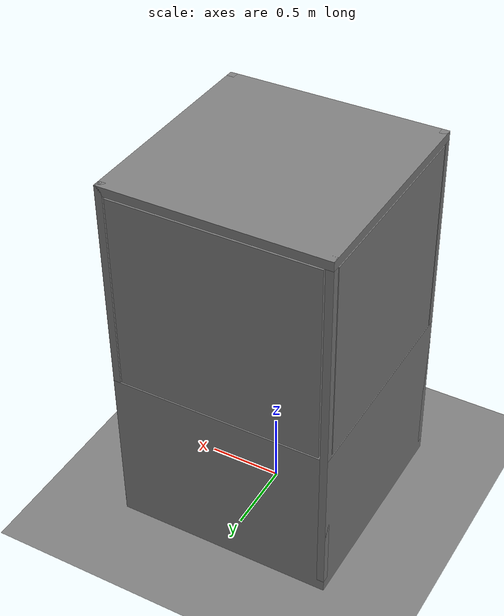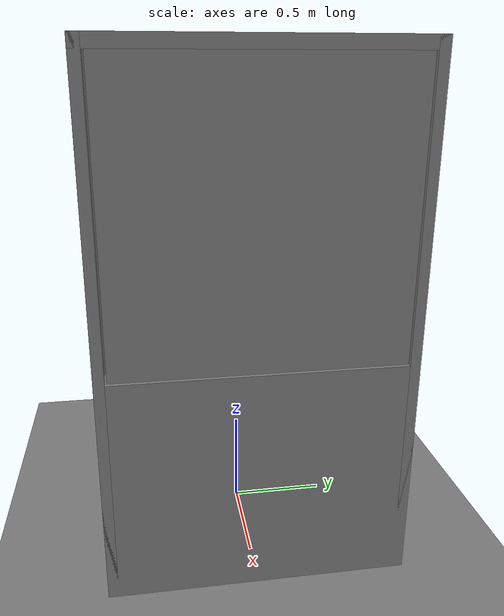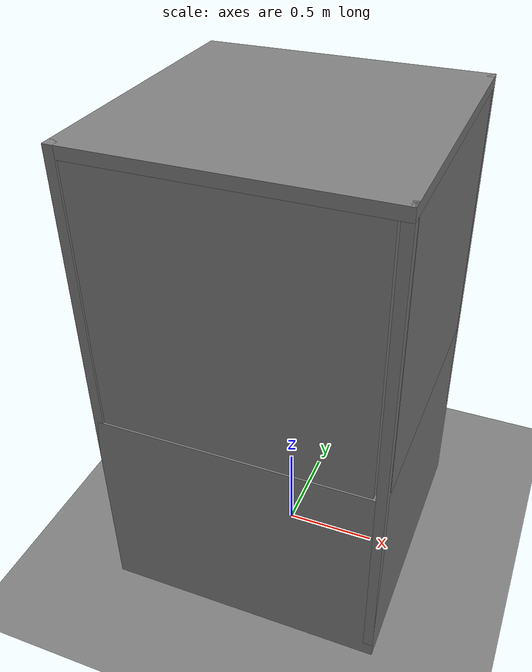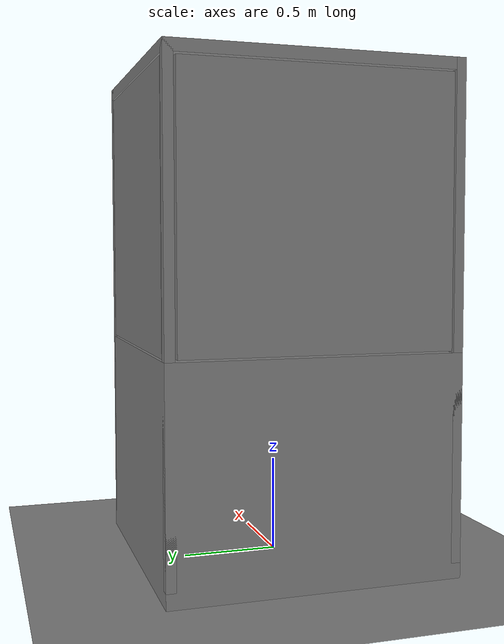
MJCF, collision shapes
<mujoco model="aic_world">
  <compiler angle="radian"/>

  <option gravity="0 0 -9.8" magnetic="5.5645e-06 2.28758e-05 -4.23884e-05"/>

  <visual>
    <headlight ambient="0 0 0" diffuse="0 0 0" specular="0 0 0"/>
  </visual>

  <default>
    <default class="world_default"/>
    <default class="cable_default">
      <joint damping="0.2"/>
    </default>
    <default class="sc_port_default">
      <geom friction="0.5 0.5"/>
    </default>
    <default class="nic_card_default">
      <geom friction="0.1 0.005 0.1"/>
    </default>
  </default>

  <extension>
    <plugin plugin="mujoco.elasticity.cable">
      <instance name="composite">
        <config key="twist" value="1e2"/>
        <config key="bend" value="4e1"/>
      </instance>
    </plugin>
  </extension>

  <asset>
    <texture type="2d" colorspace="linear" name="texture_40c09d03e70381a6858aaba3470a3c41133384b4031fa9131cbb5f4dc5cd3986_floor_visual_Plane" file="40c09d03e70381a6858aaba3470a3c41133384b4031fa9131cbb5f4dc5cd3986_floor_visual_b3a94635-54d6beff6424435d3828cb4c8a1278d9ea3964b0.png"/>
    <texture type="2d" colorspace="linear" name="texture_905de86c942092710a3b3b7c801a4a971c55ce1db8e8e66de2d222bccbf68920_sc_plug_visual_merged_0" file="905de86c942092710a3b3b7c801a4a971c55ce1db8e8e66de2d222bccbf68920_sc_plug_visual_5875f865-48f62b2f4840d852c7f39a01e6c183037dc1485b.png"/>
    <texture type="2d" colorspace="linear" name="texture_98c00f0bc914fd28942a5b5b497872ae817e62fdc7c7810ecaa8069a9692ceaf_lc_plug_visual_merged_0" file="98c00f0bc914fd28942a5b5b497872ae817e62fdc7c7810ecaa8069a9692ceaf_lc_plug_visual_03dabf32-0905e8a8aa368516e682f6ec84258100cdb4efef.png"/>
    <texture type="2d" colorspace="linear" name="texture_bac71237ef67393fcec4e1a5deb385aa5fe0d294b7e1711efc530aa1463ef5d6_sfp_module_visual_Body.005" file="bac71237ef67393fcec4e1a5deb385aa5fe0d294b7e1711efc530aa1463ef5d6_sfp_module_visual_8fc63b58-7471eafc55dcb668ae68adfe70a147b363ba3be9.png"/>
    <texture type="2d" colorspace="linear" name="texture_bac71237ef67393fcec4e1a5deb385aa5fe0d294b7e1711efc530aa1463ef5d6_sfp_module_visual_Body.005_1" file="bac71237ef67393fcec4e1a5deb385aa5fe0d294b7e1711efc530aa1463ef5d6_sfp_module_visual_1f09e86a-a4dc4a72bd6e778067310898a5c179607fd78966.png"/>
    <material name="material_e35a3160deff872a7475b59ee7dfb4969f85c5fc103de22f82442b320b077c85_enclosure_visual_V1014952.001" class="world_default" shininess="30" rgba="0.290196 0.290196 0.290196 1"/>
    <material name="material_e35a3160deff872a7475b59ee7dfb4969f85c5fc103de22f82442b320b077c85_enclosure_visual_V1014952.001_1" class="world_default" shininess="30" rgba="0.129412 0.129412 0.133333 1"/>
    <material name="material_e35a3160deff872a7475b59ee7dfb4969f85c5fc103de22f82442b320b077c85_light_visual_Plane.001" class="world_default" shininess="30" rgba="0.5 0.5 0.5 1"/>
    <material name="material_40c09d03e70381a6858aaba3470a3c41133384b4031fa9131cbb5f4dc5cd3986_floor_visual_Plane" class="world_default" texture="texture_40c09d03e70381a6858aaba3470a3c41133384b4031fa9131cbb5f4dc5cd3986_floor_visual_Plane" shininess="30" rgba="0.5 0.5 0.5 1"/>
    <material name="material_40c09d03e70381a6858aaba3470a3c41133384b4031fa9131cbb5f4dc5cd3986_walls_visual_Curve.001" class="world_default" shininess="30" rgba="0.0196078 0.0196078 0.0196078 1"/>
    <material name="material_40c09d03e70381a6858aaba3470a3c41133384b4031fa9131cbb5f4dc5cd3986_walls_visual_merged_1" class="world_default" shininess="30" rgba="0.262745 0.262745 0.262745 1"/>
    <material name="material_40c09d03e70381a6858aaba3470a3c41133384b4031fa9131cbb5f4dc5cd3986_walls_visual_Plane.003_1" class="world_default" shininess="30" rgba="0.8 0.8 0.8 1"/>
    <material name="material_40c09d03e70381a6858aaba3470a3c41133384b4031fa9131cbb5f4dc5cd3986_walls_visual_Plane.002" class="world_default" shininess="30" rgba="0.207843 0.207843 0.207843 1"/>
    <material name="material_905de86c942092710a3b3b7c801a4a971c55ce1db8e8e66de2d222bccbf68920_sc_plug_visual_merged_0" class="world_default" texture="texture_905de86c942092710a3b3b7c801a4a971c55ce1db8e8e66de2d222bccbf68920_sc_plug_visual_merged_0" shininess="30" rgba="0.5 0.5 0.5 1"/>
    <material name="material_98c00f0bc914fd28942a5b5b497872ae817e62fdc7c7810ecaa8069a9692ceaf_lc_plug_visual_merged_0" class="world_default" texture="texture_98c00f0bc914fd28942a5b5b497872ae817e62fdc7c7810ecaa8069a9692ceaf_lc_plug_visual_merged_0" shininess="30" rgba="0.5 0.5 0.5 1"/>
    <material name="material_bac71237ef67393fcec4e1a5deb385aa5fe0d294b7e1711efc530aa1463ef5d6_sfp_module_visual_Body.005" class="world_default" texture="texture_bac71237ef67393fcec4e1a5deb385aa5fe0d294b7e1711efc530aa1463ef5d6_sfp_module_visual_Body.005" shininess="30" rgba="0.5 0.5 0.5 1"/>
    <material name="material_bac71237ef67393fcec4e1a5deb385aa5fe0d294b7e1711efc530aa1463ef5d6_sfp_module_visual_Body.005_1" class="world_default" texture="texture_bac71237ef67393fcec4e1a5deb385aa5fe0d294b7e1711efc530aa1463ef5d6_sfp_module_visual_Body.005_1" shininess="30" rgba="0.5 0.5 0.5 1"/>
    <material name="material_7689a9b747d6b156977e79b2206b5e29540e3d66cde22b2879e5c8aaf9f30d90_base_visual_ISO_4762_-_M3_x_8.019" class="world_default" shininess="30" rgba="0.0352941 0.0352941 0.0313726 1"/>
    <material name="material_7689a9b747d6b156977e79b2206b5e29540e3d66cde22b2879e5c8aaf9f30d90_base_visual_ISO_4762_-_M3_x_8.019_1" class="world_default" shininess="30" rgba="0.0313726 0.0313726 0.0313726 1"/>
    <material name="material_7689a9b747d6b156977e79b2206b5e29540e3d66cde22b2879e5c8aaf9f30d90_base_visual_ISO_4762_-_M3_x_8.019_2" class="world_default" shininess="30" rgba="0.215686 0 0.215686 1"/>
    <mesh name="e35a3160deff872a7475b59ee7dfb4969f85c5fc103de22f82442b320b077c85_enclosure_visual_V1014952.001" class="world_default" content_type="model/obj" file="e35a3160deff872a7475b59ee7dfb4969f85c5fc103de22f82442b320b077c85_enclosure_visual_V1014952.001-c990efe7b9dfe87aa065fd6eb3960ce051ae2aef.obj" inertia="shell"/>
    <mesh name="e35a3160deff872a7475b59ee7dfb4969f85c5fc103de22f82442b320b077c85_enclosure_visual_V1014952.001_1" class="world_default" content_type="model/obj" file="e35a3160deff872a7475b59ee7dfb4969f85c5fc103de22f82442b320b077c85_enclosure_visual_V1014952.001_1-807e07de06af157c84b994a232617507a7059420.obj" inertia="shell"/>
    <mesh name="e35a3160deff872a7475b59ee7dfb4969f85c5fc103de22f82442b320b077c85_light_visual_Plane.001" class="world_default" content_type="model/obj" file="e35a3160deff872a7475b59ee7dfb4969f85c5fc103de22f82442b320b077c85_light_visual_Plane.001-a8a774a80bc239d73769a498eae528b206eebcb0.obj" inertia="shell"/>
    <mesh name="40c09d03e70381a6858aaba3470a3c41133384b4031fa9131cbb5f4dc5cd3986_floor_visual_Plane" class="world_default" content_type="model/obj" file="40c09d03e70381a6858aaba3470a3c41133384b4031fa9131cbb5f4dc5cd3986_floor_visual_Plane-4dc7f6150ad7c239769a0860a01efb2015657aea.obj" inertia="shell"/>
    <mesh name="40c09d03e70381a6858aaba3470a3c41133384b4031fa9131cbb5f4dc5cd3986_walls_visual_Curve.001" class="world_default" content_type="model/obj" file="40c09d03e70381a6858aaba3470a3c41133384b4031fa9131cbb5f4dc5cd3986_walls_visual_Curve.001-4d7c79ac2e958832fdb15589262141ca1b80d3a5.obj" inertia="shell"/>
    <mesh name="40c09d03e70381a6858aaba3470a3c41133384b4031fa9131cbb5f4dc5cd3986_walls_visual_merged_1" class="world_default" content_type="model/obj" file="40c09d03e70381a6858aaba3470a3c41133384b4031fa9131cbb5f4dc5cd3986_walls_visual_merged_1-359a22140d528747936e80bedf90e1437a177a9f.obj" inertia="shell"/>
    <mesh name="40c09d03e70381a6858aaba3470a3c41133384b4031fa9131cbb5f4dc5cd3986_walls_visual_Plane.003_1" class="world_default" content_type="model/obj" file="40c09d03e70381a6858aaba3470a3c41133384b4031fa9131cbb5f4dc5cd3986_walls_visual_Plane.003_1-cd05ed21fa19a2784fb772d7519abf7c31c8b85f.obj" inertia="shell"/>
    <mesh name="40c09d03e70381a6858aaba3470a3c41133384b4031fa9131cbb5f4dc5cd3986_walls_visual_Plane.002" class="world_default" content_type="model/obj" file="40c09d03e70381a6858aaba3470a3c41133384b4031fa9131cbb5f4dc5cd3986_walls_visual_Plane.002-ee4f781765eec46c2256d941981732d4b1857f24.obj" inertia="shell"/>
    <mesh name="905de86c942092710a3b3b7c801a4a971c55ce1db8e8e66de2d222bccbf68920_sc_plug_visual_merged_0" class="world_default" content_type="model/obj" file="905de86c942092710a3b3b7c801a4a971c55ce1db8e8e66de2d222bccbf68920_sc_plug_visual_merged_0-67f94accf247f722dd4954d7448d7956402901f2.obj" inertia="shell"/>
    <mesh name="98c00f0bc914fd28942a5b5b497872ae817e62fdc7c7810ecaa8069a9692ceaf_lc_plug_visual_merged_0" class="world_default" content_type="model/obj" file="98c00f0bc914fd28942a5b5b497872ae817e62fdc7c7810ecaa8069a9692ceaf_lc_plug_visual_merged_0-fdaf59710fc3cc118a7df05add4ff4205edda4ef.obj" inertia="shell"/>
    <mesh name="bac71237ef67393fcec4e1a5deb385aa5fe0d294b7e1711efc530aa1463ef5d6_sfp_module_visual_Body.005" class="world_default" content_type="model/obj" file="bac71237ef67393fcec4e1a5deb385aa5fe0d294b7e1711efc530aa1463ef5d6_sfp_module_visual_Body.005-f93147e1e403de321fb70c06a4b1e00f20feb9fd.obj" inertia="shell"/>
    <mesh name="bac71237ef67393fcec4e1a5deb385aa5fe0d294b7e1711efc530aa1463ef5d6_sfp_module_visual_Body.005_1" class="world_default" content_type="model/obj" file="bac71237ef67393fcec4e1a5deb385aa5fe0d294b7e1711efc530aa1463ef5d6_sfp_module_visual_Body.005_1-4af964a95522e2593eb6381eca4f09ef239782c7.obj" inertia="shell"/>
    <mesh name="7689a9b747d6b156977e79b2206b5e29540e3d66cde22b2879e5c8aaf9f30d90_base_visual_ISO_4762_-_M3_x_8.019" class="world_default" content_type="model/obj" file="7689a9b747d6b156977e79b2206b5e29540e3d66cde22b2879e5c8aaf9f30d90_base_visual_ISO_4762_-_M3_x_8.019-f814bb518c42769543ab6246809f3fe4af5c2b64.obj" inertia="shell"/>
    <mesh name="7689a9b747d6b156977e79b2206b5e29540e3d66cde22b2879e5c8aaf9f30d90_base_visual_ISO_4762_-_M3_x_8.019_1" class="world_default" content_type="model/obj" file="7689a9b747d6b156977e79b2206b5e29540e3d66cde22b2879e5c8aaf9f30d90_base_visual_ISO_4762_-_M3_x_8.019_1-0b276ba9910a7642121235b62d2afc47c3995782.obj" inertia="shell"/>
    <mesh name="7689a9b747d6b156977e79b2206b5e29540e3d66cde22b2879e5c8aaf9f30d90_base_visual_ISO_4762_-_M3_x_8.019_2" class="world_default" content_type="model/obj" file="7689a9b747d6b156977e79b2206b5e29540e3d66cde22b2879e5c8aaf9f30d90_base_visual_ISO_4762_-_M3_x_8.019_2-7b96569be9572803417c5650ee83c9c883b44191.obj" inertia="shell"/>
  </asset>

  <worldbody>
    <light name="enclosure_light" class="world_default" pos="0 0 2.5" dir="0 0 -1" intensity="0.4" range="2" attenuation="1 0.01 0.001" cutoff="114.592" exponent="0.993023" diffuse="1 1 1" specular="0.1 0.1 0.1"/>
    <light name="ceiling_01" class="world_default" pos="2 2 6" dir="0 0 -1" intensity="2" range="9" castshadow="false" attenuation="1 0.01 0.001" cutoff="360" diffuse="1 1 1" specular="0.1 0.1 0.1"/>
    <light name="ceiling_02" class="world_default" pos="-2 -2 6" dir="0 0 -1" intensity="2" range="9" castshadow="false" attenuation="1 0.01 0.001" cutoff="360" diffuse="1 1 1" specular="0.1 0.1 0.1"/>
    <body name="enclosure_link">
      <inertial pos="0 0 0" mass="1" diaginertia="1 1 1"/>
      <geom name="v1015026001_collider_box" class="world_default" size="0.75 0.569492 0.75" pos="-0.010998 0.009283 0.569706" quat="1.22475e-07 -1.22474e-07 0.707107 0.707107" type="box" group="3"/>
      <geom name="v1015028001_collider_box" class="world_default" size="0.0254 0.0254 1.25" pos="0.713602 0.733883 1.3292" quat="1.73205e-07 0 0 -1" type="box" group="3"/>
      <geom name="v1015013001_collider_box" class="world_default" size="0.0304 0.75 0.75" pos="-0.010998 0.009283 2.5488" quat="0.707107 0 -0.707107 0" type="box" group="3"/>
      <geom name="v1015027_collider_box" class="world_default" size="0.0254 0.0254 1.25" pos="-0.735598 0.733883 1.3292" quat="1.73205e-07 0 0 -1" type="box" group="3"/>
      <geom name="v1015029_collider_box" class="world_default" size="0.0254 0.0254 1.25" pos="-0.735598 -0.715317 1.3292" quat="0 1.73205e-07 -1 -1.73205e-07" type="box" group="3"/>
      <geom name="v1015030_collider_box" class="world_default" size="0.0254 0.0254 1.25" pos="0.713602 -0.715317 1.3292" quat="1.73205e-07 0 0 -1" type="box" group="3"/>
      <geom name="enclosure_visual" class="world_default" type="mesh" contype="0" conaffinity="0" material="material_e35a3160deff872a7475b59ee7dfb4969f85c5fc103de22f82442b320b077c85_enclosure_visual_V1014952.001" mesh="e35a3160deff872a7475b59ee7dfb4969f85c5fc103de22f82442b320b077c85_enclosure_visual_V1014952.001"/>
      <geom name="enclosure_visual_0" class="world_default" type="mesh" contype="0" conaffinity="0" material="material_e35a3160deff872a7475b59ee7dfb4969f85c5fc103de22f82442b320b077c85_enclosure_visual_V1014952.001_1" mesh="e35a3160deff872a7475b59ee7dfb4969f85c5fc103de22f82442b320b077c85_enclosure_visual_V1014952.001_1"/>
      <geom name="light_visual" class="world_default" type="mesh" contype="0" conaffinity="0" material="material_e35a3160deff872a7475b59ee7dfb4969f85c5fc103de22f82442b320b077c85_light_visual_Plane.001" mesh="e35a3160deff872a7475b59ee7dfb4969f85c5fc103de22f82442b320b077c85_light_visual_Plane.001"/>
    </body>
    <body name="enclosure_walls_link">
      <inertial pos="0 0 0" mass="1" diaginertia="1 1 1"/>
      <geom name="v1015062006_collider_box" class="world_default" size="0.0250005 0.6796 0.6892" pos="-0.010998 0.734284 1.8288" quat="0.5 0.5 -0.5 -0.5" type="box" group="3"/>
      <geom name="v1015062005_collider_box" class="world_default" size="0.6892 0.6796 0.025" pos="-0.735998 0.009283 1.8288" quat="0.5 0.5 -0.5 -0.5" type="box" group="3"/>
      <geom name="v1015062007_collider_box" class="world_default" size="0.025 0.6846 0.6892" pos="-0.010998 -0.715717 1.8338" quat="0.5 0.5 -0.5 -0.5" type="box" group="3"/>
      <geom name="v1015062008_collider_box" class="world_default" size="0.6892 0.6846 0.025" pos="0.714002 0.009283 1.8338" quat="0.5 0.5 -0.5 -0.5" type="box" group="3"/>
    </body>
    <body name="floor_link">
      <inertial pos="0 0 0" mass="1" diaginertia="1 1 1"/>
      <geom name="floor_cylinder" class="world_default" size="5 5 1" type="plane" group="3"/>
      <geom name="floor_visual" class="world_default" type="mesh" contype="0" conaffinity="0" material="material_40c09d03e70381a6858aaba3470a3c41133384b4031fa9131cbb5f4dc5cd3986_floor_visual_Plane" mesh="40c09d03e70381a6858aaba3470a3c41133384b4031fa9131cbb5f4dc5cd3986_floor_visual_Plane"/>
      <geom name="walls_visual" class="world_default" type="mesh" contype="0" conaffinity="0" material="material_40c09d03e70381a6858aaba3470a3c41133384b4031fa9131cbb5f4dc5cd3986_walls_visual_Curve.001" mesh="40c09d03e70381a6858aaba3470a3c41133384b4031fa9131cbb5f4dc5cd3986_walls_visual_Curve.001"/>
      <geom name="walls_visual_0" class="world_default" type="mesh" contype="0" conaffinity="0" material="material_40c09d03e70381a6858aaba3470a3c41133384b4031fa9131cbb5f4dc5cd3986_walls_visual_merged_1" mesh="40c09d03e70381a6858aaba3470a3c41133384b4031fa9131cbb5f4dc5cd3986_walls_visual_merged_1"/>
      <geom name="walls_visual_1" class="world_default" type="mesh" contype="0" conaffinity="0" material="material_40c09d03e70381a6858aaba3470a3c41133384b4031fa9131cbb5f4dc5cd3986_walls_visual_Plane.003_1" mesh="40c09d03e70381a6858aaba3470a3c41133384b4031fa9131cbb5f4dc5cd3986_walls_visual_Plane.003_1"/>
      <geom name="walls_visual_2" class="world_default" type="mesh" contype="0" conaffinity="0" material="material_40c09d03e70381a6858aaba3470a3c41133384b4031fa9131cbb5f4dc5cd3986_walls_visual_Plane.002" mesh="40c09d03e70381a6858aaba3470a3c41133384b4031fa9131cbb5f4dc5cd3986_walls_visual_Plane.002"/>
    </body>
    <body name="cable_end_0" childclass="cable_default" pos="0.171400 0.020606 1.511889" quat="0.712741 0.312130 -0.052173 0.625982">
      <freejoint name="cable_end_0_free"/>
      <inertial pos="0 0 0" mass="0.0025" diaginertia="1e-6 1e-6 1e-6"/>
      <geom name="base_vis" class="world_default" size="0.002" contype="0" conaffinity="0"/>
      <plugin instance="composite"/>
      <body name="cable_connection_0" pos="-1.48444e-08 3.0082e-08 -1.50298e-07" quat="0.925312 -0.0906499 -0.328799 0.165745">
        <inertial pos="0 0 0" mass="0.01" diaginertia="1e-6 1e-6 1e-6"/>
        <joint name="joint_connection_end_0" class="world_default" pos="0 0 0" type="ball" damping="0.2"/>
        <geom name="visual_0_0" class="world_default" size="0.001 0.00180278" pos="-0.00180278 0.002 0" quat="0.676768 0.204909 0.676764 -0.204908" type="cylinder" contype="0" conaffinity="0"/>
        <geom name="visual_1_0" class="world_default" size="0.001 0.00180278" pos="-0.00180278 -0.002 0" quat="0.676768 -0.204909 0.676764 0.204908" type="cylinder" contype="0" conaffinity="0"/>
        <plugin instance="composite"/>
        <body name="link_1" pos="0.00199636 -0.00566238 -0.023237" quat="-0.0719663 -0.263115 -0.956489 0.103536">
          <inertial pos="0 0 0" mass="0.0025" diaginertia="1e-6 1e-6 1e-6"/>
          <joint name="joint_end_0" pos="0 0 -0.024" type="ball"/>
          <geom name="link_1_collision" size="0.002 0.018" pos="0 0 0.006" type="cylinder" group="3"/>
          <geom name="sphere_1_collision" size="0.002" pos="0 0 0.024" group="3"/>
          <geom name="link_1_vis" size="0.002 0.024" type="cylinder" contype="0" conaffinity="0"/>
          <geom name="sphere_1_vis" size="0.002" pos="0 0 0.024" contype="0" conaffinity="0"/>
          <plugin instance="composite"/>
          <body name="link_2" pos="0.00583946 -0.00751902 0.0460314" quat="0.979026 0.157116 0.127803 -0.0221026">
            <inertial pos="0 0 0" mass="0.0025" diaginertia="1e-6 1e-6 1e-6"/>
            <joint name="joint_1" pos="0 0 -0.024" type="ball"/>
            <geom name="link_2_collision" size="0.002 0.024" type="cylinder" group="3"/>
            <geom name="sphere_2_collision" size="0.002" pos="0 0 0.024" group="3"/>
            <geom name="link_2_vis" size="0.002 0.024" type="cylinder" contype="0" conaffinity="0"/>
            <geom name="sphere_2_vis" size="0.002" pos="0 0 0.024" contype="0" conaffinity="0"/>
            <plugin instance="composite"/>
            <body name="link_3" pos="0.000229349 -0.00663991 0.0470624" quat="0.989951 0.139564 0.00783328 -0.0213923">
              <inertial pos="0 0 0" mass="0.0025" diaginertia="1e-6 1e-6 1e-6"/>
              <joint name="joint_2" pos="0 0 -0.024" type="ball"/>
              <geom name="link_3_collision" size="0.002 0.024" type="cylinder" group="3"/>
              <geom name="sphere_3_collision" size="0.002" pos="0 0 0.024" group="3"/>
              <geom name="link_3_vis" size="0.002 0.024" type="cylinder" contype="0" conaffinity="0"/>
              <geom name="sphere_3_vis" size="0.002" pos="0 0 0.024" contype="0" conaffinity="0"/>
              <plugin instance="composite"/>
              <body name="link_4" pos="-0.00226539 -0.00466825 0.0474325" quat="0.993764 0.0989827 -0.045043 -0.0246212">
                <inertial pos="0 0 0" mass="0.0025" diaginertia="1e-6 1e-6 1e-6"/>
                <joint name="joint_3" pos="0 0 -0.024" type="ball"/>
                <geom name="link_4_collision" size="0.002 0.024" type="cylinder" group="3"/>
                <geom name="sphere_4_collision" size="0.002" pos="0 0 0.024" group="3"/>
                <geom name="link_4_vis" size="0.002 0.024" type="cylinder" contype="0" conaffinity="0"/>
                <geom name="sphere_4_vis" size="0.002" pos="0 0 0.024" contype="0" conaffinity="0"/>
                <plugin instance="composite"/>
                <body name="link_5" pos="-0.00370374 -0.00314798 0.0475031" quat="0.993985 0.0690201 -0.0748209 -0.0403856">
                  <inertial pos="0 0 0" mass="0.0025" diaginertia="1e-6 1e-6 1e-6"/>
                  <joint name="joint_4" pos="0 0 -0.024" type="ball"/>
                  <geom name="link_5_collision" size="0.002 0.024" type="cylinder" group="3"/>
                  <geom name="sphere_5_collision" size="0.002" pos="0 0 0.024" group="3"/>
                  <geom name="link_5_vis" size="0.002 0.024" type="cylinder" contype="0" conaffinity="0"/>
                  <geom name="sphere_5_vis" size="0.002" pos="0 0 0.024" contype="0" conaffinity="0"/>
                  <plugin instance="composite"/>
                  <body name="link_6" pos="-0.00400302 -0.00179903 0.0475956" quat="0.993729 0.0429329 -0.0811864 -0.0637858">
                    <inertial pos="0 0 0" mass="0.0025" diaginertia="1e-6 1e-6 1e-6"/>
                    <joint name="joint_5" pos="0 0 -0.024" type="ball"/>
                    <geom name="link_6_collision" size="0.002 0.024" type="cylinder" group="3"/>
                    <geom name="sphere_6_collision" size="0.002" pos="0 0 0.024" group="3"/>
                    <geom name="link_6_vis" size="0.002 0.024" type="cylinder" contype="0" conaffinity="0"/>
                    <geom name="sphere_6_vis" size="0.002" pos="0 0 0.024" contype="0" conaffinity="0"/>
                    <plugin instance="composite"/>
                    <body name="link_7" pos="-0.00350979 -0.000708359 0.0477319" quat="0.993366 0.0211591 -0.0717502 -0.0873449">
                      <inertial pos="0 0 0" mass="0.0025" diaginertia="1e-6 1e-6 1e-6"/>
                      <joint name="joint_6" pos="0 0 -0.024" type="ball"/>
                      <geom name="link_7_collision" size="0.002 0.024" type="cylinder" group="3"/>
                      <geom name="sphere_7_collision" size="0.002" pos="0 0 0.024" group="3"/>
                      <geom name="link_7_vis" size="0.002 0.024" type="cylinder" contype="0" conaffinity="0"/>
                      <geom name="sphere_7_vis" size="0.002" pos="0 0 0.024" contype="0" conaffinity="0"/>
                      <plugin instance="composite"/>
                      <body name="link_8" pos="-0.00241003 0.000201094 0.0478785" quat="0.993429 0.000992624 -0.0504421 -0.102728">
                        <inertial pos="0 0 0" mass="0.0025" diaginertia="1e-6 1e-6 1e-6"/>
                        <joint name="joint_7" pos="0 0 -0.024" type="ball"/>
                        <geom name="link_8_collision" size="0.002 0.024" type="cylinder" group="3"/>
                        <geom name="sphere_8_collision" size="0.002" pos="0 0 0.024" group="3"/>
                        <geom name="link_8_vis" size="0.002 0.024" type="cylinder" contype="0" conaffinity="0"/>
                        <geom name="sphere_8_vis" size="0.002" pos="0 0 0.024" contype="0" conaffinity="0"/>
                        <plugin instance="composite"/>
                        <body name="link_9" pos="-0.00116905 0.00100387 0.0479517" quat="0.993967 -0.0182554 -0.0264281 -0.104869">
                          <inertial pos="0 0 0" mass="0.0025" diaginertia="1e-6 1e-6 1e-6"/>
                          <joint name="joint_8" pos="0 0 -0.024" type="ball"/>
                          <geom name="link_9_collision" size="0.002 0.024" type="cylinder" group="3"/>
                          <geom name="sphere_9_collision" size="0.002" pos="0 0 0.024" group="3"/>
                          <geom name="link_9_vis" size="0.002 0.024" type="cylinder" contype="0" conaffinity="0"/>
                          <geom name="sphere_9_vis" size="0.002" pos="0 0 0.024" contype="0" conaffinity="0"/>
                          <plugin instance="composite"/>
                          <body name="link_10" pos="-0.000281822 0.00176537 0.0479336" quat="0.994694 -0.0360495 -0.00938747 -0.0958943">
                            <inertial pos="0 0 0" mass="0.0025" diaginertia="1e-6 1e-6 1e-6"/>
                            <joint name="joint_9" pos="0 0 -0.024" type="ball"/>
                            <geom name="link_10_collision" size="0.002 0.024" type="cylinder" group="3"/>
                            <geom name="sphere_10_collision" size="0.002" pos="0 0 0.024" group="3"/>
                            <geom name="link_10_vis" size="0.002 0.024" type="cylinder" contype="0" conaffinity="0"/>
                            <geom name="sphere_10_vis" size="0.002" pos="0 0 0.024" contype="0" conaffinity="0"/>
                            <plugin instance="composite"/>
                            <body name="link_11" pos="0.00127211 0.00268124 0.0478169" quat="0.993832 -0.0581761 0.0212726 -0.0919862">
                              <inertial pos="0 0 0" mass="0.0025" diaginertia="1e-6 1e-6 1e-6"/>
                              <joint name="joint_10" pos="0 0 -0.024" type="ball"/>
                              <geom name="link_11_collision" size="0.002 0.024" type="cylinder" group="3"/>
                              <geom name="sphere_11_collision" size="0.002" pos="0 0 0.024" group="3"/>
                              <geom name="link_11_vis" size="0.002 0.024" type="cylinder" contype="0" conaffinity="0"/>
                              <geom name="sphere_11_vis" size="0.002" pos="0 0 0.024" contype="0" conaffinity="0"/>
                              <plugin instance="composite"/>
                              <body name="link_12" pos="0.00326414 0.00422103 0.0474009" quat="0.991346 -0.0930152 0.0621461 -0.0686964">
                                <inertial pos="0 0 0" mass="0.0025" diaginertia="1e-6 1e-6 1e-6"/>
                                <joint name="joint_11" pos="0 0 -0.024" type="ball"/>
                                <geom name="link_12_collision" size="0.002 0.024" type="cylinder" group="3"/>
                                <geom name="sphere_12_collision" size="0.002" pos="0 0 0.024" group="3"/>
                                <geom name="link_12_vis" size="0.002 0.024" type="cylinder" contype="0" conaffinity="0"/>
                                <geom name="sphere_12_vis" size="0.002" pos="0 0 0.024" contype="0" conaffinity="0"/>
                                <plugin instance="composite"/>
                                <body name="link_13" pos="0.00481413 0.00598276 0.0467391" quat="0.985884 -0.130501 0.0961673 -0.0418796">
                                  <inertial pos="0 0 0" mass="0.0025" diaginertia="1e-6 1e-6 1e-6"/>
                                  <joint name="joint_12" pos="0 0 -0.024" type="ball"/>
                                  <geom name="link_13_collision" size="0.002 0.024" type="cylinder" group="3"/>
                                  <geom name="sphere_13_collision" size="0.002" pos="0 0 0.024" group="3"/>
                                  <geom name="link_13_vis" size="0.002 0.024" type="cylinder" contype="0" conaffinity="0"/>
                                  <geom name="sphere_13_vis" size="0.002" pos="0 0 0.024" contype="0" conaffinity="0"/>
                                  <plugin instance="composite"/>
                                  <body name="link_14" pos="0.0059056 0.0075051 0.0460188" quat="0.979015 -0.161664 0.123097 -0.0155638">
                                    <inertial pos="0 0 0" mass="0.0025" diaginertia="1e-6 1e-6 1e-6"/>
                                    <joint name="joint_13" pos="0 0 -0.024" type="ball"/>
                                    <geom name="link_14_collision" size="0.002 0.024" type="cylinder" group="3"/>
                                    <geom name="sphere_14_collision" size="0.002" pos="0 0 0.024" group="3"/>
                                    <geom name="link_14_vis" size="0.002 0.024" type="cylinder" contype="0" conaffinity="0"/>
                                    <geom name="sphere_14_vis" size="0.002" pos="0 0 0.024" contype="0" conaffinity="0"/>
                                    <plugin instance="composite"/>
                                    <body name="link_15" pos="0.00663854 0.00818632 0.0455628" quat="0.974244 -0.173866 0.143369 0.00801502">
                                      <inertial pos="0 0 0" mass="0.0025" diaginertia="1e-6 1e-6 1e-6"/>
                                      <joint name="joint_14" pos="0 0 -0.024" type="ball"/>
                                      <geom name="link_15_collision" size="0.002 0.024" type="cylinder" group="3"/>
                                      <geom name="sphere_15_collision" size="0.002" pos="0 0 0.024" group="3"/>
                                      <geom name="link_15_vis" size="0.002 0.024" type="cylinder" contype="0" conaffinity="0"/>
                                      <geom name="sphere_15_vis" size="0.002" pos="0 0 0.024" contype="0" conaffinity="0"/>
                                      <plugin instance="composite"/>
                                      <body name="link_16" pos="0.00692144 0.00767825 0.045661" quat="0.974948 -0.159916 0.15228 0.0267212">
                                        <inertial pos="0 0 0" mass="0.0025" diaginertia="1e-6 1e-6 1e-6"/>
                                        <joint name="joint_15" pos="0 0 -0.024" type="ball"/>
                                        <geom name="link_16_collision" size="0.002 0.024" type="cylinder" group="3"/>
                                        <geom name="sphere_16_collision" size="0.002" pos="0 0 0.024" group="3"/>
                                        <geom name="link_16_vis" size="0.002 0.024" type="cylinder" contype="0" conaffinity="0"/>
                                        <geom name="sphere_16_vis" size="0.002" pos="0 0 0.024" contype="0" conaffinity="0"/>
                                        <plugin instance="composite"/>
                                        <body name="link_17" pos="0.00681573 0.00605139 0.0462039" quat="0.980324 -0.122628 0.149696 0.03896">
                                          <inertial pos="0 0 0" mass="0.0025" diaginertia="1e-6 1e-6 1e-6"/>
                                          <joint name="joint_16" pos="0 0 -0.024" type="ball"/>
                                          <geom name="link_17_collision" size="0.002 0.024" type="cylinder" group="3"/>
                                          <geom name="sphere_17_collision" size="0.002" pos="0 0 0.024" group="3"/>
                                          <geom name="link_17_vis" size="0.002 0.024" type="cylinder" contype="0" conaffinity="0"/>
                                          <geom name="sphere_17_vis" size="0.002" pos="0 0 0.024" contype="0" conaffinity="0"/>
                                          <plugin instance="composite"/>
                                          <body name="link_18" pos="0.00641568 0.0035756 0.0468485" quat="0.986989 -0.0693949 0.138462 0.0431804">
                                            <inertial pos="0 0 0" mass="0.0025" diaginertia="1e-6 1e-6 1e-6"/>
                                            <joint name="joint_17" pos="0 0 -0.024" type="ball"/>
                                            <geom name="link_18_collision" size="0.002 0.024" type="cylinder" group="3"/>
                                            <geom name="sphere_18_collision" size="0.002" pos="0 0 0.024" group="3"/>
                                            <geom name="link_18_vis" size="0.002 0.024" type="cylinder" contype="0" conaffinity="0"/>
                                            <geom name="sphere_18_vis" size="0.002" pos="0 0 0.024" contype="0" conaffinity="0"/>
                                            <plugin instance="composite"/>
                                            <body name="link_19" pos="0.00637434 0.00138394 0.0470977" quat="0.989822 -0.0239811 0.135084 0.0378161">
                                              <inertial pos="0 0 0" mass="0.0025" diaginertia="1e-6 1e-6 1e-6"/>
                                              <joint name="joint_18" pos="0 0 -0.024" type="ball"/>
                                              <geom name="link_19_collision" size="0.002 0.024" type="cylinder" group="3"/>
                                              <geom name="sphere_19_collision" size="0.002" pos="0 0 0.024" group="3"/>
                                              <geom name="link_19_vis" size="0.002 0.024" type="cylinder" contype="0" conaffinity="0"/>
                                              <geom name="sphere_19_vis" size="0.002" pos="0 0 0.024" contype="0" conaffinity="0"/>
                                              <plugin instance="composite"/>
                                              <body name="link_20" pos="0.00586515 -0.00106219 0.0472501" quat="0.991753 0.0257315 0.122476 0.0276369">
                                                <inertial pos="0 0 0" mass="0.0025" diaginertia="1e-6 1e-6 1e-6"/>
                                                <joint name="joint_19" pos="0 0 -0.024" type="ball"/>
                                                <geom name="link_20_collision" size="0.002 0.024" type="cylinder" group="3"/>
                                                <geom name="sphere_20_collision" size="0.002" pos="0 0 0.024" group="3"/>
                                                <geom name="link_20_vis" size="0.002 0.024" type="cylinder" contype="0" conaffinity="0"/>
                                                <geom name="sphere_20_vis" size="0.002" pos="0 0 0.024" contype="0" conaffinity="0"/>
                                                <plugin instance="composite"/>
                                                <body name="cable_connection_1" pos="9.69949e-07 -3.10992e-07 0.0240003" quat="0.776261 0.0592911 -0.626332 -0.0401549">
                                                  <inertial pos="0 0 0" mass="0.01" diaginertia="1e-6 1e-6 1e-6"/>
                                                  <joint name="joint_connection_end_1" class="world_default" pos="0 0 0" type="ball"/>
                                                  <geom name="collision_0" class="world_default" size="0.001 0.00367636" pos="0.00367636 -0.00425 0" quat="0.673802 0.214463 0.673798 -0.214461" type="cylinder" group="3"/>
                                                  <geom name="collision_1" class="world_default" size="0.001 0.00367636" pos="0.00367636 0.00425 0" quat="0.673802 -0.214463 0.673798 0.214461" type="cylinder" group="3"/>
                                                  <geom name="visual_0" class="world_default" size="0.001 0.00367636" pos="0.00367636 -0.00425 0" quat="0.673802 0.214463 0.673798 -0.214461" type="cylinder" contype="0" conaffinity="0"/>
                                                  <geom name="visual_1" class="world_default" size="0.001 0.00367636" pos="0.00367636 0.00425 0" quat="0.673802 -0.214463 0.673798 0.214461" type="cylinder" contype="0" conaffinity="0"/>
                                                  <plugin instance="composite"/>
                                                  <body name="sc_plug_link" pos="0.0520001 1.28738e-08 -5.60463e-08" quat="1 -1.74345e-08 -1.59546e-08 -8.74737e-08">
                                                    <inertial pos="-0.00907511 4.9566e-05 8.71699e-06" quat="0.000872542 0.70691 -0.000868656 0.707302" mass="0.04" diaginertia="8.85404e-06 7.17322e-06 2.12253e-06"/>
                                                    <geom name="housing blue_predeterminado005_collider_box" class="world_default" size="0.0063605 0.0045 0.00365" pos="0.002038 0.006344 4e-06" type="box" group="3"/>
                                                    <geom name="housing blue_predeterminado005_collider_box.001" class="world_default" size="0.0063605 0.0045 0.00365" pos="0.002038 -0.006344 4e-06" type="box" group="3"/>
                                                    <geom name="housing blue_predeterminado005_collider_box.002" class="world_default" size="0.006861 0.0035 0.00365" pos="0.002539 0.006344 4e-06" type="box" group="3"/>
                                                    <geom name="housing blue_predeterminado005_collider_box.003" class="world_default" size="0.006861 0.0035 0.00365" pos="0.002539 -0.006344 4e-06" type="box" group="3"/>
                                                    <geom name="housing blue_predeterminado005_collider_box.004" class="world_default" size="0.001 0.000705 0.00365" pos="0.008191 0.003056 4e-06" quat="0.92388 0 0 -0.382683" type="box" group="3"/>
                                                    <geom name="housing blue_predeterminado005_collider_box.005" class="world_default" size="0.001 0.000705 0.00365" pos="0.008191 0.009636 4e-06" quat="0.92388 0 0 0.382683" type="box" group="3"/>
                                                    <geom name="housing blue_predeterminado005_collider_box.006" class="world_default" size="0.001 0.000705 0.00365" pos="0.008191 -0.009636 4e-06" quat="0.92388 0 0 -0.382683" type="box" group="3"/>
                                                    <geom name="housing blue_predeterminado005_collider_box.007" class="world_default" size="0.001 0.000705 0.00365" pos="0.008191 -0.003056 4e-06" quat="0.92388 0 0 0.382683" type="box" group="3"/>
                                                    <geom name="cube002_collider_box" class="world_default" size="0.006275 0.0125 0.00505" pos="-0.010291 0 0" type="box" group="3"/>
                                                    <geom name="cylinder011_collider_cylinder" class="world_default" size="0.0029 0.014605" pos="-0.031147 -0.00635 0" quat="0.707107 0 0.707107 0" type="cylinder" group="3"/>
                                                    <geom name="cylinder005_collider_cylinder" class="world_default" size="0.0029 0.015799" pos="-0.029953 0.00635 0" quat="0.707107 0 0.707107 0" type="cylinder" group="3"/>
                                                    <geom name="ferula_predeterminado005_collider_cylinder" class="world_default" size="0.00125 0.007" pos="0.00465 -0.00635 0" quat="0.707107 0 0.707107 0" type="cylinder" group="3"/>
                                                    <geom name="ferula_predeterminado003_collider_cylinder" class="world_default" size="0.00125 0.007" pos="0.00465 0.00635 0" quat="0.707107 0 0.707107 0" type="cylinder" group="3"/>
                                                    <geom name="side_box_collision" class="world_default" size="0.002125 0.00081 0.0005" pos="0.00146 -0.00632 0.0042" type="box" group="3"/>
                                                    <geom name="side_box_collision_2" class="world_default" size="0.002125 0.00081 0.0005" pos="0.00146 0.00632 0.0042" type="box" group="3"/>
                                                    <geom name="sc_plug_visual" class="world_default" type="mesh" contype="0" conaffinity="0" material="material_905de86c942092710a3b3b7c801a4a971c55ce1db8e8e66de2d222bccbf68920_sc_plug_visual_merged_0" mesh="905de86c942092710a3b3b7c801a4a971c55ce1db8e8e66de2d222bccbf68920_sc_plug_visual_merged_0"/>
                                                    <body name="sc_tip_link" pos="0.0116501 -3.46861e-08 -4.28867e-08" quat="0.499999 -0.5 0.500001 -0.5">
                                                      <inertial pos="0 0 0" mass="0.001" diaginertia="1e-06 1e-06 1e-06"/>
                                                    </body>
                                                  </body>
                                                </body>
                                              </body>
                                            </body>
                                          </body>
                                        </body>
                                      </body>
                                    </body>
                                  </body>
                                </body>
                              </body>
                            </body>
                          </body>
                        </body>
                      </body>
                    </body>
                  </body>
                </body>
              </body>
            </body>
          </body>
        </body>
        <body name="lc_plug_link" pos="-0.0409999 -1.79383e-09 2.26646e-08" quat="0.707109 7.35725e-08 1.63743e-07 0.707104">
          <inertial pos="0 0.0197 0" quat="0 0.707107 0 0.707107" mass="0.01" diaginertia="1.06153e-07 9.96094e-08 8.49658e-09"/>
          <geom name="cylinder001_collider_cylinder.001" class="world_default" size="0.000625 0.001502" pos="0.003125 0.0197 0" quat="0.707107 0.707107 0 0" type="cylinder" group="3"/>
          <geom name="cylinder_collider_cylinder.001" class="world_default" size="0.000625 0.001502" pos="-0.003125 0.0197 0" quat="0.707107 0.707107 0 0" type="cylinder" group="3"/>
          <geom name="lc_plug_visual" class="world_default" type="mesh" contype="0" conaffinity="0" material="material_98c00f0bc914fd28942a5b5b497872ae817e62fdc7c7810ecaa8069a9692ceaf_lc_plug_visual_merged_0" mesh="98c00f0bc914fd28942a5b5b497872ae817e62fdc7c7810ecaa8069a9692ceaf_lc_plug_visual_merged_0"/>
          <body name="sfp_module_link" pos="6.03279e-09 0.0384 -5.10071e-09" quat="1.51984e-07 1 -1.21516e-06 -1.39517e-06">
            <inertial pos="0.00024115 0.00702224 0.000553372" quat="0.510037 0.497012 -0.483415 0.50907" mass="0.02" diaginertia="3.07513e-06 2.81054e-06 5.69919e-07"/>
            <geom name="port_collider_box.008" class="world_default" size="0.00071 0.000503 0.0064415" pos="-0.00571 0.018813 -0.003546" quat="0.707107 0.707107 0 0" type="box" group="3"/>
            <geom name="port_collider_box.009" class="world_default" size="0.00071 0.000503 0.0064415" pos="0.00571 0.018813 -0.003546" quat="0.707107 0.707107 0 0" type="box" group="3"/>
            <geom name="body_collider_box" class="world_default" size="0.006875 0.02365 0.0003945" pos="0 0.001 0.00383" type="box" group="3"/>
            <geom name="body_collider_box.001" class="world_default" size="0.006875 0.02365 8.9e-05" pos="0 0.001 -0.004138" type="box" group="3"/>
            <geom name="body_collider_box.002" class="world_default" size="0.000287 0.02365 0.004225" pos="-0.006588 0.001 0" type="box" group="3"/>
            <geom name="body_collider_box.003" class="world_default" size="0.0004055 0.02365 0.004225" pos="0.00647 0.001 0" type="box" group="3"/>
            <geom name="port_collider_box.010" class="world_default" size="0.00642 0.0038815 0.0058645" pos="0 0.01229 0.000119" quat="0.707107 0.707107 0 0" type="box" group="3"/>
            <geom name="port_collider_box002_collider_box" class="world_default" size="0.00642 0.0002045 0.0008005" pos="0 0.024453 -0.004254" quat="0.707107 0.707107 0 0" type="box" group="3"/>
            <geom name="port_collider_box.011" class="world_default" size="0.00125 0.000503 0.0064415" pos="0 0.018813 -0.003546" quat="0.707107 0.707107 0 0" type="box" group="3"/>
            <geom name="sfp_module_visual" class="world_default" type="mesh" contype="0" conaffinity="0" material="material_bac71237ef67393fcec4e1a5deb385aa5fe0d294b7e1711efc530aa1463ef5d6_sfp_module_visual_Body.005" mesh="bac71237ef67393fcec4e1a5deb385aa5fe0d294b7e1711efc530aa1463ef5d6_sfp_module_visual_Body.005"/>
            <geom name="sfp_module_visual_0" class="world_default" type="mesh" contype="0" conaffinity="0" material="material_bac71237ef67393fcec4e1a5deb385aa5fe0d294b7e1711efc530aa1463ef5d6_sfp_module_visual_Body.005_1" mesh="bac71237ef67393fcec4e1a5deb385aa5fe0d294b7e1711efc530aa1463ef5d6_sfp_module_visual_Body.005_1"/>
            <body name="sfp_tip_link" pos="-2.00098e-10 -0.0236501 2.56471e-08" quat="0.707105 0.707108 4.06037e-08 -4.90624e-08">
              <inertial pos="0 0 0" mass="0.001" diaginertia="1e-06 1e-06 1e-06"/>
              <geom name="contact_collision" class="world_default" size="0.006875 0.0021125 0.0005" pos="0 0.0021125 -0.0005" type="box" group="3"/>
              <geom name="non_contact_collision" class="world_default" size="0.006875 0.0021125 0.0005" pos="0 -0.0021125 -0.0005" type="box" group="3"/>
            </body>
          </body>
        </body>
      </body>
    </body>
    <body name="task_board_base_link" pos="0.15 -0.2 1.14" quat="4.63268e-05 0 0 1">
      <inertial pos="0 0 0" mass="5" diaginertia="0.1 0.1 0.1"/>
      <geom name="task_board_base_link_fixed_joint_lump__v1015083001_collider_box_left_collision" class="world_default" size="0.15 0.114 0.0045" pos="0 -0.1 0.0075" type="box" group="3"/>
      <geom name="task_board_base_link_fixed_joint_lump__v1015083001_collider_right_collision_1" class="world_default" size="0.15 0.0635 0.0045" pos="0 0.149 0.0075" type="box" group="3"/>
      <geom name="task_board_base_link_fixed_joint_lump__v1015083001_collider_mid_collision_2" class="world_default" size="0.07 0.006 0.0045" pos="-0.075 0.05 0.0075" type="box" group="3"/>
      <geom name="task_board_base_link_fixed_joint_lump__v1015083001_collider_bottom_collision_3" class="world_default" size="0.0825 0.2125 0.0045" pos="0.068 0 0.0075" type="box" group="3"/>
      <geom name="task_board_base_link_fixed_joint_lump__v1015083001_collider_top_collision_4" class="world_default" size="0.0075 0.2125 0.0045" pos="-0.143 0 0.0075" type="box" group="3"/>
      <geom name="task_board_base_link_fixed_joint_lump__base_visual_visual" class="world_default" type="mesh" contype="0" conaffinity="0" material="material_7689a9b747d6b156977e79b2206b5e29540e3d66cde22b2879e5c8aaf9f30d90_base_visual_ISO_4762_-_M3_x_8.019" mesh="7689a9b747d6b156977e79b2206b5e29540e3d66cde22b2879e5c8aaf9f30d90_base_visual_ISO_4762_-_M3_x_8.019"/>
      <geom name="task_board_base_link_fixed_joint_lump__base_visual_visual_0" class="world_default" type="mesh" contype="0" conaffinity="0" material="material_7689a9b747d6b156977e79b2206b5e29540e3d66cde22b2879e5c8aaf9f30d90_base_visual_ISO_4762_-_M3_x_8.019_1" mesh="7689a9b747d6b156977e79b2206b5e29540e3d66cde22b2879e5c8aaf9f30d90_base_visual_ISO_4762_-_M3_x_8.019_1"/>
      <geom name="task_board_base_link_fixed_joint_lump__base_visual_visual_1" class="world_default" type="mesh" contype="0" conaffinity="0" material="material_7689a9b747d6b156977e79b2206b5e29540e3d66cde22b2879e5c8aaf9f30d90_base_visual_ISO_4762_-_M3_x_8.019_2" mesh="7689a9b747d6b156977e79b2206b5e29540e3d66cde22b2879e5c8aaf9f30d90_base_visual_ISO_4762_-_M3_x_8.019_2"/>
    </body>
    <body name="static_link">
      <inertial pos="0 0 0" mass="1" diaginertia="1 1 1"/>
    </body>
    <body name="static_link_0">
      <inertial pos="0 0 0" mass="1" diaginertia="1 1 1"/>
    </body>
  </worldbody>

  <contact>
    <exclude body1="cable_end_0" body2="link_1"/>
  </contact>

  <equality>
    <weld body1="ati/tool_link" body2="lc_plug_link" relpose="-0.000711 0.001759 0.168213 0.577301 0.816105 -0.021418 -0.015395" solref="0.002 1" solimp="0.99 0.999 0.001"/>
  </equality>
</mujoco>
